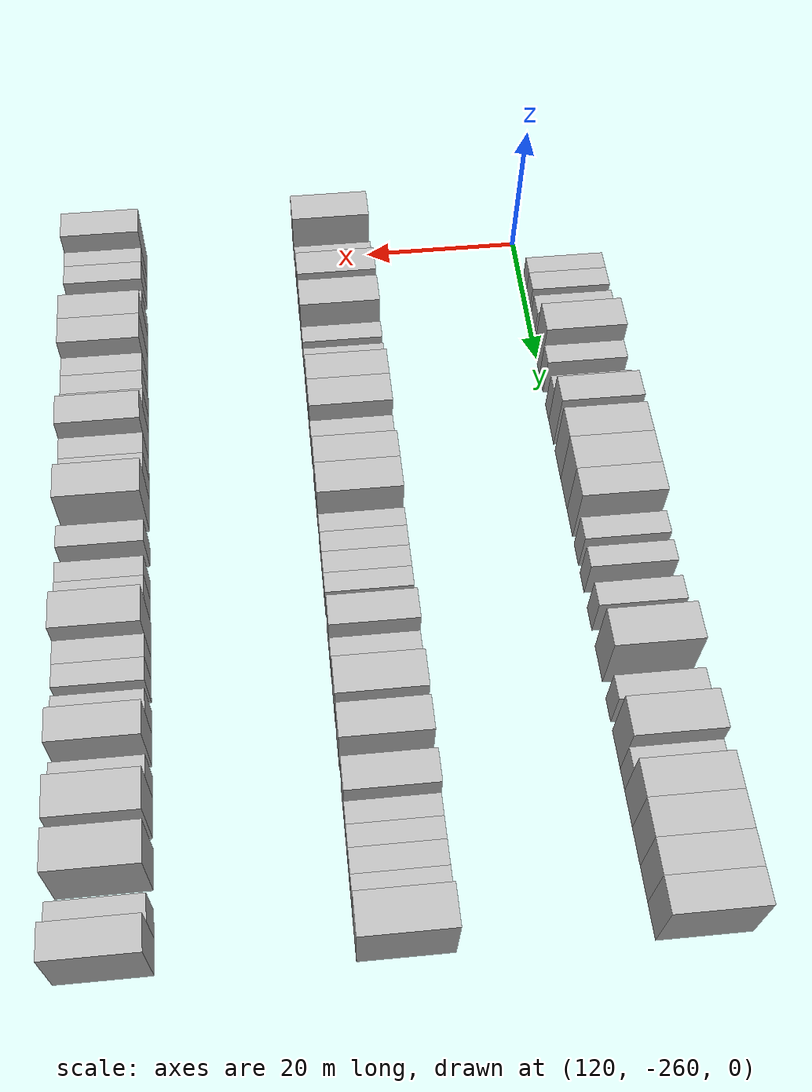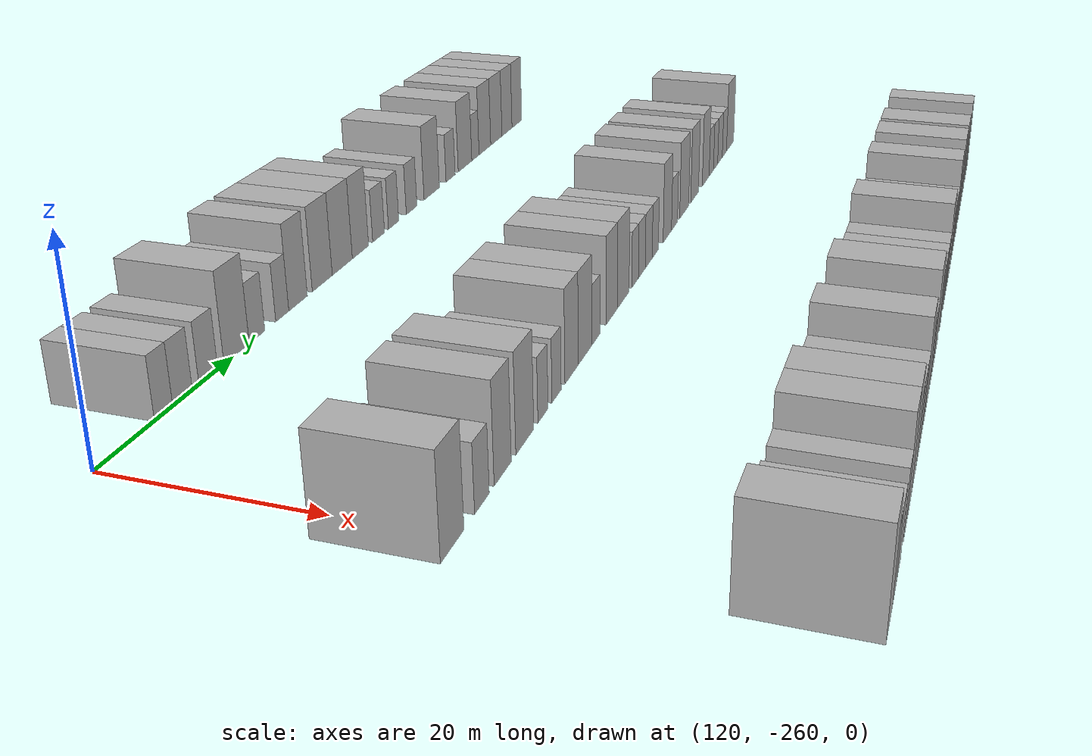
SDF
<sdf version="1.6">
 <world name="default">
  <model name="building_745">
   <static>1</static>
   <pose>115.0000 -250.7620 0 0.000000 0.000000 0.000000</pose>
   <link name="link">
    <pose>0 0 3.00 0 0 0</pose>
    <collision name="collision"><geometry><box><size>10.0000 2.5880 6.0000</size></box></geometry></collision>
    <visual name="visual">
     <cast_shadows>0</cast_shadows>
     <geometry><box><size>10.0000 2.5880 6.0000</size></box></geometry>
     <material>
      <script>
       <uri>model://HANNAS_wall/materials/scripts</uri>
       <uri>model://HANNAS_wall/materials/textures</uri>
       <name>vrc/HANNAS_wall</name>
      </script>
     </material>
    </visual>
   </link>
  </model>
  <model name="building_746">
   <static>1</static>
   <pose>115.0000 -248.0181 0 0.000000 0.000000 0.000000</pose>
   <link name="link">
    <pose>0 0 3.00 0 0 0</pose>
    <collision name="collision"><geometry><box><size>10.0000 2.8997 6.0000</size></box></geometry></collision>
    <visual name="visual">
     <cast_shadows>0</cast_shadows>
     <geometry><box><size>10.0000 2.8997 6.0000</size></box></geometry>
     <material>
      <script>
       <uri>model://HANNAS_wall/materials/scripts</uri>
       <uri>model://HANNAS_wall/materials/textures</uri>
       <name>vrc/HANNAS_wall</name>
      </script>
     </material>
    </visual>
   </link>
  </model>
  <model name="building_747">
   <static>1</static>
   <pose>115.0000 -244.0855 0 0.000000 0.000000 0.000000</pose>
   <link name="link">
    <pose>0 0 3.00 0 0 0</pose>
    <collision name="collision"><geometry><box><size>10.0000 2.9657 6.0000</size></box></geometry></collision>
    <visual name="visual">
     <cast_shadows>0</cast_shadows>
     <geometry><box><size>10.0000 2.9657 6.0000</size></box></geometry>
     <material>
      <script>
       <uri>model://HANNAS_wall/materials/scripts</uri>
       <uri>model://HANNAS_wall/materials/textures</uri>
       <name>vrc/HANNAS_wall</name>
      </script>
     </material>
    </visual>
   </link>
  </model>
  <model name="building_748">
   <static>1</static>
   <pose>115.0000 -239.4727 0 0.000000 0.000000 0.000000</pose>
   <link name="link">
    <pose>0 0 4.50 0 0 0</pose>
    <collision name="collision"><geometry><box><size>10.0000 4.2599 9.0000</size></box></geometry></collision>
    <visual name="visual">
     <cast_shadows>0</cast_shadows>
     <geometry><box><size>10.0000 4.2599 9.0000</size></box></geometry>
     <material>
      <script>
       <uri>model://HANNAS_wall/materials/scripts</uri>
       <uri>model://HANNAS_wall/materials/textures</uri>
       <name>vrc/HANNAS_wall</name>
      </script>
     </material>
    </visual>
   </link>
  </model>
  <model name="building_749">
   <static>1</static>
   <pose>115.0000 -235.9634 0 0.000000 0.000000 0.000000</pose>
   <link name="link">
    <pose>0 0 3.00 0 0 0</pose>
    <collision name="collision"><geometry><box><size>10.0000 2.7586 6.0000</size></box></geometry></collision>
    <visual name="visual">
     <cast_shadows>0</cast_shadows>
     <geometry><box><size>10.0000 2.7586 6.0000</size></box></geometry>
     <material>
      <script>
       <uri>model://HANNAS_wall/materials/scripts</uri>
       <uri>model://HANNAS_wall/materials/textures</uri>
       <name>vrc/HANNAS_wall</name>
      </script>
     </material>
    </visual>
   </link>
  </model>
  <model name="building_750">
   <static>1</static>
   <pose>115.0000 -231.3529 0 0.000000 0.000000 0.000000</pose>
   <link name="link">
    <pose>0 0 3.00 0 0 0</pose>
    <collision name="collision"><geometry><box><size>10.0000 2.4625 6.0000</size></box></geometry></collision>
    <visual name="visual">
     <cast_shadows>0</cast_shadows>
     <geometry><box><size>10.0000 2.4625 6.0000</size></box></geometry>
     <material>
      <script>
       <uri>model://HANNAS_wall/materials/scripts</uri>
       <uri>model://HANNAS_wall/materials/textures</uri>
       <name>vrc/HANNAS_wall</name>
      </script>
     </material>
    </visual>
   </link>
  </model>
  <model name="building_751">
   <static>1</static>
   <pose>115.0000 -228.2910 0 0.000000 0.000000 0.000000</pose>
   <link name="link">
    <pose>0 0 4.50 0 0 0</pose>
    <collision name="collision"><geometry><box><size>10.0000 3.6613 9.0000</size></box></geometry></collision>
    <visual name="visual">
     <cast_shadows>0</cast_shadows>
     <geometry><box><size>10.0000 3.6613 9.0000</size></box></geometry>
     <material>
      <script>
       <uri>model://HANNAS_wall/materials/scripts</uri>
       <uri>model://HANNAS_wall/materials/textures</uri>
       <name>vrc/HANNAS_wall</name>
      </script>
     </material>
    </visual>
   </link>
  </model>
  <model name="building_752">
   <static>1</static>
   <pose>115.0000 -223.3579 0 0.000000 0.000000 0.000000</pose>
   <link name="link">
    <pose>0 0 4.50 0 0 0</pose>
    <collision name="collision"><geometry><box><size>10.0000 4.2048 9.0000</size></box></geometry></collision>
    <visual name="visual">
     <cast_shadows>0</cast_shadows>
     <geometry><box><size>10.0000 4.2048 9.0000</size></box></geometry>
     <material>
      <script>
       <uri>model://HANNAS_wall/materials/scripts</uri>
       <uri>model://HANNAS_wall/materials/textures</uri>
       <name>vrc/HANNAS_wall</name>
      </script>
     </material>
    </visual>
   </link>
  </model>
  <model name="building_753">
   <static>1</static>
   <pose>115.0000 -219.0209 0 0.000000 0.000000 0.000000</pose>
   <link name="link">
    <pose>0 0 4.50 0 0 0</pose>
    <collision name="collision"><geometry><box><size>10.0000 4.4693 9.0000</size></box></geometry></collision>
    <visual name="visual">
     <cast_shadows>0</cast_shadows>
     <geometry><box><size>10.0000 4.4693 9.0000</size></box></geometry>
     <material>
      <script>
       <uri>model://HANNAS_wall/materials/scripts</uri>
       <uri>model://HANNAS_wall/materials/textures</uri>
       <name>vrc/HANNAS_wall</name>
      </script>
     </material>
    </visual>
   </link>
  </model>
  <model name="building_754">
   <static>1</static>
   <pose>115.0000 -214.8854 0 0.000000 0.000000 0.000000</pose>
   <link name="link">
    <pose>0 0 4.50 0 0 0</pose>
    <collision name="collision"><geometry><box><size>10.0000 3.8016 9.0000</size></box></geometry></collision>
    <visual name="visual">
     <cast_shadows>0</cast_shadows>
     <geometry><box><size>10.0000 3.8016 9.0000</size></box></geometry>
     <material>
      <script>
       <uri>model://HANNAS_wall/materials/scripts</uri>
       <uri>model://HANNAS_wall/materials/textures</uri>
       <name>vrc/HANNAS_wall</name>
      </script>
     </material>
    </visual>
   </link>
  </model>
  <model name="building_755">
   <static>1</static>
   <pose>115.0000 -210.5259 0 0.000000 0.000000 0.000000</pose>
   <link name="link">
    <pose>0 0 3.00 0 0 0</pose>
    <collision name="collision"><geometry><box><size>10.0000 2.9173 6.0000</size></box></geometry></collision>
    <visual name="visual">
     <cast_shadows>0</cast_shadows>
     <geometry><box><size>10.0000 2.9173 6.0000</size></box></geometry>
     <material>
      <script>
       <uri>model://HANNAS_wall/materials/scripts</uri>
       <uri>model://HANNAS_wall/materials/textures</uri>
       <name>vrc/HANNAS_wall</name>
      </script>
     </material>
    </visual>
   </link>
  </model>
  <model name="building_756">
   <static>1</static>
   <pose>115.0000 -206.7354 0 0.000000 0.000000 0.000000</pose>
   <link name="link">
    <pose>0 0 3.00 0 0 0</pose>
    <collision name="collision"><geometry><box><size>10.0000 2.6638 6.0000</size></box></geometry></collision>
    <visual name="visual">
     <cast_shadows>0</cast_shadows>
     <geometry><box><size>10.0000 2.6638 6.0000</size></box></geometry>
     <material>
      <script>
       <uri>model://HANNAS_wall/materials/scripts</uri>
       <uri>model://HANNAS_wall/materials/textures</uri>
       <name>vrc/HANNAS_wall</name>
      </script>
     </material>
    </visual>
   </link>
  </model>
  <model name="building_757">
   <static>1</static>
   <pose>115.0000 -201.9475 0 0.000000 0.000000 0.000000</pose>
   <link name="link">
    <pose>0 0 3.00 0 0 0</pose>
    <collision name="collision"><geometry><box><size>10.0000 2.9118 6.0000</size></box></geometry></collision>
    <visual name="visual">
     <cast_shadows>0</cast_shadows>
     <geometry><box><size>10.0000 2.9118 6.0000</size></box></geometry>
     <material>
      <script>
       <uri>model://HANNAS_wall/materials/scripts</uri>
       <uri>model://HANNAS_wall/materials/textures</uri>
       <name>vrc/HANNAS_wall</name>
      </script>
     </material>
    </visual>
   </link>
  </model>
  <model name="building_758">
   <static>1</static>
   <pose>115.0000 -196.2515 0 0.000000 0.000000 0.000000</pose>
   <link name="link">
    <pose>0 0 4.50 0 0 0</pose>
    <collision name="collision"><geometry><box><size>10.0000 4.4802 9.0000</size></box></geometry></collision>
    <visual name="visual">
     <cast_shadows>0</cast_shadows>
     <geometry><box><size>10.0000 4.4802 9.0000</size></box></geometry>
     <material>
      <script>
       <uri>model://HANNAS_wall/materials/scripts</uri>
       <uri>model://HANNAS_wall/materials/textures</uri>
       <name>vrc/HANNAS_wall</name>
      </script>
     </material>
    </visual>
   </link>
  </model>
  <model name="building_759">
   <static>1</static>
   <pose>115.0000 -190.6073 0 0.000000 0.000000 0.000000</pose>
   <link name="link">
    <pose>0 0 3.00 0 0 0</pose>
    <collision name="collision"><geometry><box><size>10.0000 2.8083 6.0000</size></box></geometry></collision>
    <visual name="visual">
     <cast_shadows>0</cast_shadows>
     <geometry><box><size>10.0000 2.8083 6.0000</size></box></geometry>
     <material>
      <script>
       <uri>model://HANNAS_wall/materials/scripts</uri>
       <uri>model://HANNAS_wall/materials/textures</uri>
       <name>vrc/HANNAS_wall</name>
      </script>
     </material>
    </visual>
   </link>
  </model>
  <model name="building_760">
   <static>1</static>
   <pose>115.0000 -185.9932 0 0.000000 0.000000 0.000000</pose>
   <link name="link">
    <pose>0 0 4.50 0 0 0</pose>
    <collision name="collision"><geometry><box><size>10.0000 4.4198 9.0000</size></box></geometry></collision>
    <visual name="visual">
     <cast_shadows>0</cast_shadows>
     <geometry><box><size>10.0000 4.4198 9.0000</size></box></geometry>
     <material>
      <script>
       <uri>model://HANNAS_wall/materials/scripts</uri>
       <uri>model://HANNAS_wall/materials/textures</uri>
       <name>vrc/HANNAS_wall</name>
      </script>
     </material>
    </visual>
   </link>
  </model>
  <model name="building_761">
   <static>1</static>
   <pose>115.0000 -182.5559 0 0.000000 0.000000 0.000000</pose>
   <link name="link">
    <pose>0 0 3.00 0 0 0</pose>
    <collision name="collision"><geometry><box><size>10.0000 2.4548 6.0000</size></box></geometry></collision>
    <visual name="visual">
     <cast_shadows>0</cast_shadows>
     <geometry><box><size>10.0000 2.4548 6.0000</size></box></geometry>
     <material>
      <script>
       <uri>model://HANNAS_wall/materials/scripts</uri>
       <uri>model://HANNAS_wall/materials/textures</uri>
       <name>vrc/HANNAS_wall</name>
      </script>
     </material>
    </visual>
   </link>
  </model>
  <model name="building_762">
   <static>1</static>
   <pose>115.0000 -179.2845 0 0.000000 0.000000 0.000000</pose>
   <link name="link">
    <pose>0 0 4.50 0 0 0</pose>
    <collision name="collision"><geometry><box><size>10.0000 4.0879 9.0000</size></box></geometry></collision>
    <visual name="visual">
     <cast_shadows>0</cast_shadows>
     <geometry><box><size>10.0000 4.0879 9.0000</size></box></geometry>
     <material>
      <script>
       <uri>model://HANNAS_wall/materials/scripts</uri>
       <uri>model://HANNAS_wall/materials/textures</uri>
       <name>vrc/HANNAS_wall</name>
      </script>
     </material>
    </visual>
   </link>
  </model>
  <model name="building_763">
   <static>1</static>
   <pose>115.0000 -175.1953 0 0.000000 0.000000 0.000000</pose>
   <link name="link">
    <pose>0 0 4.50 0 0 0</pose>
    <collision name="collision"><geometry><box><size>10.0000 4.0905 9.0000</size></box></geometry></collision>
    <visual name="visual">
     <cast_shadows>0</cast_shadows>
     <geometry><box><size>10.0000 4.0905 9.0000</size></box></geometry>
     <material>
      <script>
       <uri>model://HANNAS_wall/materials/scripts</uri>
       <uri>model://HANNAS_wall/materials/textures</uri>
       <name>vrc/HANNAS_wall</name>
      </script>
     </material>
    </visual>
   </link>
  </model>
  <model name="building_764">
   <static>1</static>
   <pose>115.0000 -171.2573 0 0.000000 0.000000 0.000000</pose>
   <link name="link">
    <pose>0 0 4.50 0 0 0</pose>
    <collision name="collision"><geometry><box><size>10.0000 3.7856 9.0000</size></box></geometry></collision>
    <visual name="visual">
     <cast_shadows>0</cast_shadows>
     <geometry><box><size>10.0000 3.7856 9.0000</size></box></geometry>
     <material>
      <script>
       <uri>model://HANNAS_wall/materials/scripts</uri>
       <uri>model://HANNAS_wall/materials/textures</uri>
       <name>vrc/HANNAS_wall</name>
      </script>
     </material>
    </visual>
   </link>
  </model>
  <model name="building_765">
   <static>1</static>
   <pose>115.0000 -167.4652 0 0.000000 0.000000 0.000000</pose>
   <link name="link">
    <pose>0 0 4.50 0 0 0</pose>
    <collision name="collision"><geometry><box><size>10.0000 3.7987 9.0000</size></box></geometry></collision>
    <visual name="visual">
     <cast_shadows>0</cast_shadows>
     <geometry><box><size>10.0000 3.7987 9.0000</size></box></geometry>
     <material>
      <script>
       <uri>model://HANNAS_wall/materials/scripts</uri>
       <uri>model://HANNAS_wall/materials/textures</uri>
       <name>vrc/HANNAS_wall</name>
      </script>
     </material>
    </visual>
   </link>
  </model>
  <model name="building_961">
   <static>1</static>
   <pose>145.0000 -260.8924 0 0.000000 0.000000 0.000000</pose>
   <link name="link">
    <pose>0 0 4.50 0 0 0</pose>
    <collision name="collision"><geometry><box><size>10.0000 4.2071 9.0000</size></box></geometry></collision>
    <visual name="visual">
     <cast_shadows>0</cast_shadows>
     <geometry><box><size>10.0000 4.2071 9.0000</size></box></geometry>
     <material>
      <script>
       <uri>model://HANNAS_wall/materials/scripts</uri>
       <uri>model://HANNAS_wall/materials/textures</uri>
       <name>vrc/HANNAS_wall</name>
      </script>
     </material>
    </visual>
   </link>
  </model>
  <model name="building_962">
   <static>1</static>
   <pose>145.0000 -255.3461 0 0.000000 0.000000 0.000000</pose>
   <link name="link">
    <pose>0 0 3.00 0 0 0</pose>
    <collision name="collision"><geometry><box><size>10.0000 2.8854 6.0000</size></box></geometry></collision>
    <visual name="visual">
     <cast_shadows>0</cast_shadows>
     <geometry><box><size>10.0000 2.8854 6.0000</size></box></geometry>
     <material>
      <script>
       <uri>model://HANNAS_wall/materials/scripts</uri>
       <uri>model://HANNAS_wall/materials/textures</uri>
       <name>vrc/HANNAS_wall</name>
      </script>
     </material>
    </visual>
   </link>
  </model>
  <model name="building_963">
   <static>1</static>
   <pose>145.0000 -251.0836 0 0.000000 0.000000 0.000000</pose>
   <link name="link">
    <pose>0 0 4.50 0 0 0</pose>
    <collision name="collision"><geometry><box><size>10.0000 3.6396 9.0000</size></box></geometry></collision>
    <visual name="visual">
     <cast_shadows>0</cast_shadows>
     <geometry><box><size>10.0000 3.6396 9.0000</size></box></geometry>
     <material>
      <script>
       <uri>model://HANNAS_wall/materials/scripts</uri>
       <uri>model://HANNAS_wall/materials/textures</uri>
       <name>vrc/HANNAS_wall</name>
      </script>
     </material>
    </visual>
   </link>
  </model>
  <model name="building_964">
   <static>1</static>
   <pose>145.0000 -246.2006 0 0.000000 0.000000 0.000000</pose>
   <link name="link">
    <pose>0 0 4.50 0 0 0</pose>
    <collision name="collision"><geometry><box><size>10.0000 4.1265 9.0000</size></box></geometry></collision>
    <visual name="visual">
     <cast_shadows>0</cast_shadows>
     <geometry><box><size>10.0000 4.1265 9.0000</size></box></geometry>
     <material>
      <script>
       <uri>model://HANNAS_wall/materials/scripts</uri>
       <uri>model://HANNAS_wall/materials/textures</uri>
       <name>vrc/HANNAS_wall</name>
      </script>
     </material>
    </visual>
   </link>
  </model>
  <model name="building_965">
   <static>1</static>
   <pose>145.0000 -241.8842 0 0.000000 0.000000 0.000000</pose>
   <link name="link">
    <pose>0 0 3.00 0 0 0</pose>
    <collision name="collision"><geometry><box><size>10.0000 2.5062 6.0000</size></box></geometry></collision>
    <visual name="visual">
     <cast_shadows>0</cast_shadows>
     <geometry><box><size>10.0000 2.5062 6.0000</size></box></geometry>
     <material>
      <script>
       <uri>model://HANNAS_wall/materials/scripts</uri>
       <uri>model://HANNAS_wall/materials/textures</uri>
       <name>vrc/HANNAS_wall</name>
      </script>
     </material>
    </visual>
   </link>
  </model>
  <model name="building_966">
   <static>1</static>
   <pose>145.0000 -238.4248 0 0.000000 0.000000 0.000000</pose>
   <link name="link">
    <pose>0 0 3.00 0 0 0</pose>
    <collision name="collision"><geometry><box><size>10.0000 2.4126 6.0000</size></box></geometry></collision>
    <visual name="visual">
     <cast_shadows>0</cast_shadows>
     <geometry><box><size>10.0000 2.4126 6.0000</size></box></geometry>
     <material>
      <script>
       <uri>model://HANNAS_wall/materials/scripts</uri>
       <uri>model://HANNAS_wall/materials/textures</uri>
       <name>vrc/HANNAS_wall</name>
      </script>
     </material>
    </visual>
   </link>
  </model>
  <model name="building_967">
   <static>1</static>
   <pose>145.0000 -234.3516 0 0.000000 0.000000 0.000000</pose>
   <link name="link">
    <pose>0 0 4.50 0 0 0</pose>
    <collision name="collision"><geometry><box><size>10.0000 3.7337 9.0000</size></box></geometry></collision>
    <visual name="visual">
     <cast_shadows>0</cast_shadows>
     <geometry><box><size>10.0000 3.7337 9.0000</size></box></geometry>
     <material>
      <script>
       <uri>model://HANNAS_wall/materials/scripts</uri>
       <uri>model://HANNAS_wall/materials/textures</uri>
       <name>vrc/HANNAS_wall</name>
      </script>
     </material>
    </visual>
   </link>
  </model>
  <model name="building_968">
   <static>1</static>
   <pose>145.0000 -230.4843 0 0.000000 0.000000 0.000000</pose>
   <link name="link">
    <pose>0 0 4.50 0 0 0</pose>
    <collision name="collision"><geometry><box><size>10.0000 4.0009 9.0000</size></box></geometry></collision>
    <visual name="visual">
     <cast_shadows>0</cast_shadows>
     <geometry><box><size>10.0000 4.0009 9.0000</size></box></geometry>
     <material>
      <script>
       <uri>model://HANNAS_wall/materials/scripts</uri>
       <uri>model://HANNAS_wall/materials/textures</uri>
       <name>vrc/HANNAS_wall</name>
      </script>
     </material>
    </visual>
   </link>
  </model>
  <model name="building_969">
   <static>1</static>
   <pose>145.0000 -227.2520 0 0.000000 0.000000 0.000000</pose>
   <link name="link">
    <pose>0 0 3.00 0 0 0</pose>
    <collision name="collision"><geometry><box><size>10.0000 2.4638 6.0000</size></box></geometry></collision>
    <visual name="visual">
     <cast_shadows>0</cast_shadows>
     <geometry><box><size>10.0000 2.4638 6.0000</size></box></geometry>
     <material>
      <script>
       <uri>model://HANNAS_wall/materials/scripts</uri>
       <uri>model://HANNAS_wall/materials/textures</uri>
       <name>vrc/HANNAS_wall</name>
      </script>
     </material>
    </visual>
   </link>
  </model>
  <model name="building_970">
   <static>1</static>
   <pose>145.0000 -222.1908 0 0.000000 0.000000 0.000000</pose>
   <link name="link">
    <pose>0 0 4.50 0 0 0</pose>
    <collision name="collision"><geometry><box><size>10.0000 3.6586 9.0000</size></box></geometry></collision>
    <visual name="visual">
     <cast_shadows>0</cast_shadows>
     <geometry><box><size>10.0000 3.6586 9.0000</size></box></geometry>
     <material>
      <script>
       <uri>model://HANNAS_wall/materials/scripts</uri>
       <uri>model://HANNAS_wall/materials/textures</uri>
       <name>vrc/HANNAS_wall</name>
      </script>
     </material>
    </visual>
   </link>
  </model>
  <model name="building_971">
   <static>1</static>
   <pose>145.0000 -218.2954 0 0.000000 0.000000 0.000000</pose>
   <link name="link">
    <pose>0 0 4.50 0 0 0</pose>
    <collision name="collision"><geometry><box><size>10.0000 4.1322 9.0000</size></box></geometry></collision>
    <visual name="visual">
     <cast_shadows>0</cast_shadows>
     <geometry><box><size>10.0000 4.1322 9.0000</size></box></geometry>
     <material>
      <script>
       <uri>model://HANNAS_wall/materials/scripts</uri>
       <uri>model://HANNAS_wall/materials/textures</uri>
       <name>vrc/HANNAS_wall</name>
      </script>
     </material>
    </visual>
   </link>
  </model>
  <model name="building_972">
   <static>1</static>
   <pose>145.0000 -214.0194 0 0.000000 0.000000 0.000000</pose>
   <link name="link">
    <pose>0 0 3.00 0 0 0</pose>
    <collision name="collision"><geometry><box><size>10.0000 2.4198 6.0000</size></box></geometry></collision>
    <visual name="visual">
     <cast_shadows>0</cast_shadows>
     <geometry><box><size>10.0000 2.4198 6.0000</size></box></geometry>
     <material>
      <script>
       <uri>model://HANNAS_wall/materials/scripts</uri>
       <uri>model://HANNAS_wall/materials/textures</uri>
       <name>vrc/HANNAS_wall</name>
      </script>
     </material>
    </visual>
   </link>
  </model>
  <model name="building_973">
   <static>1</static>
   <pose>145.0000 -211.4927 0 0.000000 0.000000 0.000000</pose>
   <link name="link">
    <pose>0 0 3.00 0 0 0</pose>
    <collision name="collision"><geometry><box><size>10.0000 2.6338 6.0000</size></box></geometry></collision>
    <visual name="visual">
     <cast_shadows>0</cast_shadows>
     <geometry><box><size>10.0000 2.6338 6.0000</size></box></geometry>
     <material>
      <script>
       <uri>model://HANNAS_wall/materials/scripts</uri>
       <uri>model://HANNAS_wall/materials/textures</uri>
       <name>vrc/HANNAS_wall</name>
      </script>
     </material>
    </visual>
   </link>
  </model>
  <model name="building_974">
   <static>1</static>
   <pose>145.0000 -208.8015 0 0.000000 0.000000 0.000000</pose>
   <link name="link">
    <pose>0 0 3.00 0 0 0</pose>
    <collision name="collision"><geometry><box><size>10.0000 2.7486 6.0000</size></box></geometry></collision>
    <visual name="visual">
     <cast_shadows>0</cast_shadows>
     <geometry><box><size>10.0000 2.7486 6.0000</size></box></geometry>
     <material>
      <script>
       <uri>model://HANNAS_wall/materials/scripts</uri>
       <uri>model://HANNAS_wall/materials/textures</uri>
       <name>vrc/HANNAS_wall</name>
      </script>
     </material>
    </visual>
   </link>
  </model>
  <model name="building_975">
   <static>1</static>
   <pose>145.0000 -206.1712 0 0.000000 0.000000 0.000000</pose>
   <link name="link">
    <pose>0 0 3.00 0 0 0</pose>
    <collision name="collision"><geometry><box><size>10.0000 2.5120 6.0000</size></box></geometry></collision>
    <visual name="visual">
     <cast_shadows>0</cast_shadows>
     <geometry><box><size>10.0000 2.5120 6.0000</size></box></geometry>
     <material>
      <script>
       <uri>model://HANNAS_wall/materials/scripts</uri>
       <uri>model://HANNAS_wall/materials/textures</uri>
       <name>vrc/HANNAS_wall</name>
      </script>
     </material>
    </visual>
   </link>
  </model>
  <model name="building_976">
   <static>1</static>
   <pose>145.0000 -201.0935 0 0.000000 0.000000 0.000000</pose>
   <link name="link">
    <pose>0 0 4.50 0 0 0</pose>
    <collision name="collision"><geometry><box><size>10.0000 3.6436 9.0000</size></box></geometry></collision>
    <visual name="visual">
     <cast_shadows>0</cast_shadows>
     <geometry><box><size>10.0000 3.6436 9.0000</size></box></geometry>
     <material>
      <script>
       <uri>model://HANNAS_wall/materials/scripts</uri>
       <uri>model://HANNAS_wall/materials/textures</uri>
       <name>vrc/HANNAS_wall</name>
      </script>
     </material>
    </visual>
   </link>
  </model>
  <model name="building_977">
   <static>1</static>
   <pose>145.0000 -197.9168 0 0.000000 0.000000 0.000000</pose>
   <link name="link">
    <pose>0 0 3.00 0 0 0</pose>
    <collision name="collision"><geometry><box><size>10.0000 2.7098 6.0000</size></box></geometry></collision>
    <visual name="visual">
     <cast_shadows>0</cast_shadows>
     <geometry><box><size>10.0000 2.7098 6.0000</size></box></geometry>
     <material>
      <script>
       <uri>model://HANNAS_wall/materials/scripts</uri>
       <uri>model://HANNAS_wall/materials/textures</uri>
       <name>vrc/HANNAS_wall</name>
      </script>
     </material>
    </visual>
   </link>
  </model>
  <model name="building_978">
   <static>1</static>
   <pose>145.0000 -193.4212 0 0.000000 0.000000 0.000000</pose>
   <link name="link">
    <pose>0 0 4.50 0 0 0</pose>
    <collision name="collision"><geometry><box><size>10.0000 4.2814 9.0000</size></box></geometry></collision>
    <visual name="visual">
     <cast_shadows>0</cast_shadows>
     <geometry><box><size>10.0000 4.2814 9.0000</size></box></geometry>
     <material>
      <script>
       <uri>model://HANNAS_wall/materials/scripts</uri>
       <uri>model://HANNAS_wall/materials/textures</uri>
       <name>vrc/HANNAS_wall</name>
      </script>
     </material>
    </visual>
   </link>
  </model>
  <model name="building_979">
   <static>1</static>
   <pose>145.0000 -188.3283 0 0.000000 0.000000 0.000000</pose>
   <link name="link">
    <pose>0 0 4.50 0 0 0</pose>
    <collision name="collision"><geometry><box><size>10.0000 3.9044 9.0000</size></box></geometry></collision>
    <visual name="visual">
     <cast_shadows>0</cast_shadows>
     <geometry><box><size>10.0000 3.9044 9.0000</size></box></geometry>
     <material>
      <script>
       <uri>model://HANNAS_wall/materials/scripts</uri>
       <uri>model://HANNAS_wall/materials/textures</uri>
       <name>vrc/HANNAS_wall</name>
      </script>
     </material>
    </visual>
   </link>
  </model>
  <model name="building_980">
   <static>1</static>
   <pose>145.0000 -182.5429 0 0.000000 0.000000 0.000000</pose>
   <link name="link">
    <pose>0 0 4.50 0 0 0</pose>
    <collision name="collision"><geometry><box><size>10.0000 3.6665 9.0000</size></box></geometry></collision>
    <visual name="visual">
     <cast_shadows>0</cast_shadows>
     <geometry><box><size>10.0000 3.6665 9.0000</size></box></geometry>
     <material>
      <script>
       <uri>model://HANNAS_wall/materials/scripts</uri>
       <uri>model://HANNAS_wall/materials/textures</uri>
       <name>vrc/HANNAS_wall</name>
      </script>
     </material>
    </visual>
   </link>
  </model>
  <model name="building_981">
   <static>1</static>
   <pose>145.0000 -179.4961 0 0.000000 0.000000 0.000000</pose>
   <link name="link">
    <pose>0 0 3.00 0 0 0</pose>
    <collision name="collision"><geometry><box><size>10.0000 2.4270 6.0000</size></box></geometry></collision>
    <visual name="visual">
     <cast_shadows>0</cast_shadows>
     <geometry><box><size>10.0000 2.4270 6.0000</size></box></geometry>
     <material>
      <script>
       <uri>model://HANNAS_wall/materials/scripts</uri>
       <uri>model://HANNAS_wall/materials/textures</uri>
       <name>vrc/HANNAS_wall</name>
      </script>
     </material>
    </visual>
   </link>
  </model>
  <model name="building_982">
   <static>1</static>
   <pose>145.0000 -177.0818 0 0.000000 0.000000 0.000000</pose>
   <link name="link">
    <pose>0 0 3.00 0 0 0</pose>
    <collision name="collision"><geometry><box><size>10.0000 2.4016 6.0000</size></box></geometry></collision>
    <visual name="visual">
     <cast_shadows>0</cast_shadows>
     <geometry><box><size>10.0000 2.4016 6.0000</size></box></geometry>
     <material>
      <script>
       <uri>model://HANNAS_wall/materials/scripts</uri>
       <uri>model://HANNAS_wall/materials/textures</uri>
       <name>vrc/HANNAS_wall</name>
      </script>
     </material>
    </visual>
   </link>
  </model>
  <model name="building_983">
   <static>1</static>
   <pose>145.0000 -174.5426 0 0.000000 0.000000 0.000000</pose>
   <link name="link">
    <pose>0 0 3.00 0 0 0</pose>
    <collision name="collision"><geometry><box><size>10.0000 2.6768 6.0000</size></box></geometry></collision>
    <visual name="visual">
     <cast_shadows>0</cast_shadows>
     <geometry><box><size>10.0000 2.6768 6.0000</size></box></geometry>
     <material>
      <script>
       <uri>model://HANNAS_wall/materials/scripts</uri>
       <uri>model://HANNAS_wall/materials/textures</uri>
       <name>vrc/HANNAS_wall</name>
      </script>
     </material>
    </visual>
   </link>
  </model>
  <model name="building_984">
   <static>1</static>
   <pose>145.0000 -171.9196 0 0.000000 0.000000 0.000000</pose>
   <link name="link">
    <pose>0 0 3.00 0 0 0</pose>
    <collision name="collision"><geometry><box><size>10.0000 2.5693 6.0000</size></box></geometry></collision>
    <visual name="visual">
     <cast_shadows>0</cast_shadows>
     <geometry><box><size>10.0000 2.5693 6.0000</size></box></geometry>
     <material>
      <script>
       <uri>model://HANNAS_wall/materials/scripts</uri>
       <uri>model://HANNAS_wall/materials/textures</uri>
       <name>vrc/HANNAS_wall</name>
      </script>
     </material>
    </visual>
   </link>
  </model>
  <model name="building_985">
   <static>1</static>
   <pose>145.0000 -168.4371 0 0.000000 0.000000 0.000000</pose>
   <link name="link">
    <pose>0 0 4.50 0 0 0</pose>
    <collision name="collision"><geometry><box><size>10.0000 4.3957 9.0000</size></box></geometry></collision>
    <visual name="visual">
     <cast_shadows>0</cast_shadows>
     <geometry><box><size>10.0000 4.3957 9.0000</size></box></geometry>
     <material>
      <script>
       <uri>model://HANNAS_wall/materials/scripts</uri>
       <uri>model://HANNAS_wall/materials/textures</uri>
       <name>vrc/HANNAS_wall</name>
      </script>
     </material>
    </visual>
   </link>
  </model>
  <model name="building_1197">
   <static>1</static>
   <pose>175.0000 -260.5291 0 0.000000 0.000000 0.000000</pose>
   <link name="link">
    <pose>0 0 4.50 0 0 0</pose>
    <collision name="collision"><geometry><box><size>10.0000 4.0484 9.0000</size></box></geometry></collision>
    <visual name="visual">
     <cast_shadows>0</cast_shadows>
     <geometry><box><size>10.0000 4.0484 9.0000</size></box></geometry>
     <material>
      <script>
       <uri>model://HANNAS_wall/materials/scripts</uri>
       <uri>model://HANNAS_wall/materials/textures</uri>
       <name>vrc/HANNAS_wall</name>
      </script>
     </material>
    </visual>
   </link>
  </model>
  <model name="building_1198">
   <static>1</static>
   <pose>175.0000 -257.2894 0 0.000000 0.000000 0.000000</pose>
   <link name="link">
    <pose>0 0 3.00 0 0 0</pose>
    <collision name="collision"><geometry><box><size>10.0000 2.4310 6.0000</size></box></geometry></collision>
    <visual name="visual">
     <cast_shadows>0</cast_shadows>
     <geometry><box><size>10.0000 2.4310 6.0000</size></box></geometry>
     <material>
      <script>
       <uri>model://HANNAS_wall/materials/scripts</uri>
       <uri>model://HANNAS_wall/materials/textures</uri>
       <name>vrc/HANNAS_wall</name>
      </script>
     </material>
    </visual>
   </link>
  </model>
  <model name="building_1199">
   <static>1</static>
   <pose>175.0000 -254.5760 0 0.000000 0.000000 0.000000</pose>
   <link name="link">
    <pose>0 0 3.00 0 0 0</pose>
    <collision name="collision"><geometry><box><size>10.0000 2.9958 6.0000</size></box></geometry></collision>
    <visual name="visual">
     <cast_shadows>0</cast_shadows>
     <geometry><box><size>10.0000 2.9958 6.0000</size></box></geometry>
     <material>
      <script>
       <uri>model://HANNAS_wall/materials/scripts</uri>
       <uri>model://HANNAS_wall/materials/textures</uri>
       <name>vrc/HANNAS_wall</name>
      </script>
     </material>
    </visual>
   </link>
  </model>
  <model name="building_1200">
   <static>1</static>
   <pose>175.0000 -249.7980 0 0.000000 0.000000 0.000000</pose>
   <link name="link">
    <pose>0 0 3.00 0 0 0</pose>
    <collision name="collision"><geometry><box><size>10.0000 2.5603 6.0000</size></box></geometry></collision>
    <visual name="visual">
     <cast_shadows>0</cast_shadows>
     <geometry><box><size>10.0000 2.5603 6.0000</size></box></geometry>
     <material>
      <script>
       <uri>model://HANNAS_wall/materials/scripts</uri>
       <uri>model://HANNAS_wall/materials/textures</uri>
       <name>vrc/HANNAS_wall</name>
      </script>
     </material>
    </visual>
   </link>
  </model>
  <model name="building_1201">
   <static>1</static>
   <pose>175.0000 -246.6189 0 0.000000 0.000000 0.000000</pose>
   <link name="link">
    <pose>0 0 4.50 0 0 0</pose>
    <collision name="collision"><geometry><box><size>10.0000 3.7978 9.0000</size></box></geometry></collision>
    <visual name="visual">
     <cast_shadows>0</cast_shadows>
     <geometry><box><size>10.0000 3.7978 9.0000</size></box></geometry>
     <material>
      <script>
       <uri>model://HANNAS_wall/materials/scripts</uri>
       <uri>model://HANNAS_wall/materials/textures</uri>
       <name>vrc/HANNAS_wall</name>
      </script>
     </material>
    </visual>
   </link>
  </model>
  <model name="building_1202">
   <static>1</static>
   <pose>175.0000 -242.7942 0 0.000000 0.000000 0.000000</pose>
   <link name="link">
    <pose>0 0 4.50 0 0 0</pose>
    <collision name="collision"><geometry><box><size>10.0000 3.8516 9.0000</size></box></geometry></collision>
    <visual name="visual">
     <cast_shadows>0</cast_shadows>
     <geometry><box><size>10.0000 3.8516 9.0000</size></box></geometry>
     <material>
      <script>
       <uri>model://HANNAS_wall/materials/scripts</uri>
       <uri>model://HANNAS_wall/materials/textures</uri>
       <name>vrc/HANNAS_wall</name>
      </script>
     </material>
    </visual>
   </link>
  </model>
  <model name="building_1203">
   <static>1</static>
   <pose>175.0000 -239.4763 0 0.000000 0.000000 0.000000</pose>
   <link name="link">
    <pose>0 0 3.00 0 0 0</pose>
    <collision name="collision"><geometry><box><size>10.0000 2.7841 6.0000</size></box></geometry></collision>
    <visual name="visual">
     <cast_shadows>0</cast_shadows>
     <geometry><box><size>10.0000 2.7841 6.0000</size></box></geometry>
     <material>
      <script>
       <uri>model://HANNAS_wall/materials/scripts</uri>
       <uri>model://HANNAS_wall/materials/textures</uri>
       <name>vrc/HANNAS_wall</name>
      </script>
     </material>
    </visual>
   </link>
  </model>
  <model name="building_1204">
   <static>1</static>
   <pose>175.0000 -236.6611 0 0.000000 0.000000 0.000000</pose>
   <link name="link">
    <pose>0 0 3.00 0 0 0</pose>
    <collision name="collision"><geometry><box><size>10.0000 2.8462 6.0000</size></box></geometry></collision>
    <visual name="visual">
     <cast_shadows>0</cast_shadows>
     <geometry><box><size>10.0000 2.8462 6.0000</size></box></geometry>
     <material>
      <script>
       <uri>model://HANNAS_wall/materials/scripts</uri>
       <uri>model://HANNAS_wall/materials/textures</uri>
       <name>vrc/HANNAS_wall</name>
      </script>
     </material>
    </visual>
   </link>
  </model>
  <model name="building_1205">
   <static>1</static>
   <pose>175.0000 -233.9628 0 0.000000 0.000000 0.000000</pose>
   <link name="link">
    <pose>0 0 3.00 0 0 0</pose>
    <collision name="collision"><geometry><box><size>10.0000 2.5506 6.0000</size></box></geometry></collision>
    <visual name="visual">
     <cast_shadows>0</cast_shadows>
     <geometry><box><size>10.0000 2.5506 6.0000</size></box></geometry>
     <material>
      <script>
       <uri>model://HANNAS_wall/materials/scripts</uri>
       <uri>model://HANNAS_wall/materials/textures</uri>
       <name>vrc/HANNAS_wall</name>
      </script>
     </material>
    </visual>
   </link>
  </model>
  <model name="building_1206">
   <static>1</static>
   <pose>175.0000 -230.6804 0 0.000000 0.000000 0.000000</pose>
   <link name="link">
    <pose>0 0 4.50 0 0 0</pose>
    <collision name="collision"><geometry><box><size>10.0000 4.0142 9.0000</size></box></geometry></collision>
    <visual name="visual">
     <cast_shadows>0</cast_shadows>
     <geometry><box><size>10.0000 4.0142 9.0000</size></box></geometry>
     <material>
      <script>
       <uri>model://HANNAS_wall/materials/scripts</uri>
       <uri>model://HANNAS_wall/materials/textures</uri>
       <name>vrc/HANNAS_wall</name>
      </script>
     </material>
    </visual>
   </link>
  </model>
  <model name="building_1207">
   <static>1</static>
   <pose>175.0000 -227.1874 0 0.000000 0.000000 0.000000</pose>
   <link name="link">
    <pose>0 0 3.00 0 0 0</pose>
    <collision name="collision"><geometry><box><size>10.0000 2.9718 6.0000</size></box></geometry></collision>
    <visual name="visual">
     <cast_shadows>0</cast_shadows>
     <geometry><box><size>10.0000 2.9718 6.0000</size></box></geometry>
     <material>
      <script>
       <uri>model://HANNAS_wall/materials/scripts</uri>
       <uri>model://HANNAS_wall/materials/textures</uri>
       <name>vrc/HANNAS_wall</name>
      </script>
     </material>
    </visual>
   </link>
  </model>
  <model name="building_1208">
   <static>1</static>
   <pose>175.0000 -224.2763 0 0.000000 0.000000 0.000000</pose>
   <link name="link">
    <pose>0 0 3.00 0 0 0</pose>
    <collision name="collision"><geometry><box><size>10.0000 2.8503 6.0000</size></box></geometry></collision>
    <visual name="visual">
     <cast_shadows>0</cast_shadows>
     <geometry><box><size>10.0000 2.8503 6.0000</size></box></geometry>
     <material>
      <script>
       <uri>model://HANNAS_wall/materials/scripts</uri>
       <uri>model://HANNAS_wall/materials/textures</uri>
       <name>vrc/HANNAS_wall</name>
      </script>
     </material>
    </visual>
   </link>
  </model>
  <model name="building_1209">
   <static>1</static>
   <pose>175.0000 -220.6080 0 0.000000 0.000000 0.000000</pose>
   <link name="link">
    <pose>0 0 4.50 0 0 0</pose>
    <collision name="collision"><geometry><box><size>10.0000 4.4863 9.0000</size></box></geometry></collision>
    <visual name="visual">
     <cast_shadows>0</cast_shadows>
     <geometry><box><size>10.0000 4.4863 9.0000</size></box></geometry>
     <material>
      <script>
       <uri>model://HANNAS_wall/materials/scripts</uri>
       <uri>model://HANNAS_wall/materials/textures</uri>
       <name>vrc/HANNAS_wall</name>
      </script>
     </material>
    </visual>
   </link>
  </model>
  <model name="building_1210">
   <static>1</static>
   <pose>175.0000 -214.9456 0 0.000000 0.000000 0.000000</pose>
   <link name="link">
    <pose>0 0 3.00 0 0 0</pose>
    <collision name="collision"><geometry><box><size>10.0000 2.8384 6.0000</size></box></geometry></collision>
    <visual name="visual">
     <cast_shadows>0</cast_shadows>
     <geometry><box><size>10.0000 2.8384 6.0000</size></box></geometry>
     <material>
      <script>
       <uri>model://HANNAS_wall/materials/scripts</uri>
       <uri>model://HANNAS_wall/materials/textures</uri>
       <name>vrc/HANNAS_wall</name>
      </script>
     </material>
    </visual>
   </link>
  </model>
  <model name="building_1211">
   <static>1</static>
   <pose>175.0000 -210.2540 0 0.000000 0.000000 0.000000</pose>
   <link name="link">
    <pose>0 0 3.00 0 0 0</pose>
    <collision name="collision"><geometry><box><size>10.0000 2.5448 6.0000</size></box></geometry></collision>
    <visual name="visual">
     <cast_shadows>0</cast_shadows>
     <geometry><box><size>10.0000 2.5448 6.0000</size></box></geometry>
     <material>
      <script>
       <uri>model://HANNAS_wall/materials/scripts</uri>
       <uri>model://HANNAS_wall/materials/textures</uri>
       <name>vrc/HANNAS_wall</name>
      </script>
     </material>
    </visual>
   </link>
  </model>
  <model name="building_1212">
   <static>1</static>
   <pose>175.0000 -207.5389 0 0.000000 0.000000 0.000000</pose>
   <link name="link">
    <pose>0 0 3.00 0 0 0</pose>
    <collision name="collision"><geometry><box><size>10.0000 2.8856 6.0000</size></box></geometry></collision>
    <visual name="visual">
     <cast_shadows>0</cast_shadows>
     <geometry><box><size>10.0000 2.8856 6.0000</size></box></geometry>
     <material>
      <script>
       <uri>model://HANNAS_wall/materials/scripts</uri>
       <uri>model://HANNAS_wall/materials/textures</uri>
       <name>vrc/HANNAS_wall</name>
      </script>
     </material>
    </visual>
   </link>
  </model>
  <model name="building_1213">
   <static>1</static>
   <pose>175.0000 -203.8822 0 0.000000 0.000000 0.000000</pose>
   <link name="link">
    <pose>0 0 4.50 0 0 0</pose>
    <collision name="collision"><geometry><box><size>10.0000 4.4277 9.0000</size></box></geometry></collision>
    <visual name="visual">
     <cast_shadows>0</cast_shadows>
     <geometry><box><size>10.0000 4.4277 9.0000</size></box></geometry>
     <material>
      <script>
       <uri>model://HANNAS_wall/materials/scripts</uri>
       <uri>model://HANNAS_wall/materials/textures</uri>
       <name>vrc/HANNAS_wall</name>
      </script>
     </material>
    </visual>
   </link>
  </model>
  <model name="building_1214">
   <static>1</static>
   <pose>175.0000 -200.2600 0 0.000000 0.000000 0.000000</pose>
   <link name="link">
    <pose>0 0 3.00 0 0 0</pose>
    <collision name="collision"><geometry><box><size>10.0000 2.8168 6.0000</size></box></geometry></collision>
    <visual name="visual">
     <cast_shadows>0</cast_shadows>
     <geometry><box><size>10.0000 2.8168 6.0000</size></box></geometry>
     <material>
      <script>
       <uri>model://HANNAS_wall/materials/scripts</uri>
       <uri>model://HANNAS_wall/materials/textures</uri>
       <name>vrc/HANNAS_wall</name>
      </script>
     </material>
    </visual>
   </link>
  </model>
  <model name="building_1215">
   <static>1</static>
   <pose>175.0000 -197.4811 0 0.000000 0.000000 0.000000</pose>
   <link name="link">
    <pose>0 0 3.00 0 0 0</pose>
    <collision name="collision"><geometry><box><size>10.0000 2.7410 6.0000</size></box></geometry></collision>
    <visual name="visual">
     <cast_shadows>0</cast_shadows>
     <geometry><box><size>10.0000 2.7410 6.0000</size></box></geometry>
     <material>
      <script>
       <uri>model://HANNAS_wall/materials/scripts</uri>
       <uri>model://HANNAS_wall/materials/textures</uri>
       <name>vrc/HANNAS_wall</name>
      </script>
     </material>
    </visual>
   </link>
  </model>
  <model name="building_1216">
   <static>1</static>
   <pose>175.0000 -193.7876 0 0.000000 0.000000 0.000000</pose>
   <link name="link">
    <pose>0 0 3.00 0 0 0</pose>
    <collision name="collision"><geometry><box><size>10.0000 2.6460 6.0000</size></box></geometry></collision>
    <visual name="visual">
     <cast_shadows>0</cast_shadows>
     <geometry><box><size>10.0000 2.6460 6.0000</size></box></geometry>
     <material>
      <script>
       <uri>model://HANNAS_wall/materials/scripts</uri>
       <uri>model://HANNAS_wall/materials/textures</uri>
       <name>vrc/HANNAS_wall</name>
      </script>
     </material>
    </visual>
   </link>
  </model>
  <model name="building_1217">
   <static>1</static>
   <pose>175.0000 -190.5544 0 0.000000 0.000000 0.000000</pose>
   <link name="link">
    <pose>0 0 4.50 0 0 0</pose>
    <collision name="collision"><geometry><box><size>10.0000 3.8204 9.0000</size></box></geometry></collision>
    <visual name="visual">
     <cast_shadows>0</cast_shadows>
     <geometry><box><size>10.0000 3.8204 9.0000</size></box></geometry>
     <material>
      <script>
       <uri>model://HANNAS_wall/materials/scripts</uri>
       <uri>model://HANNAS_wall/materials/textures</uri>
       <name>vrc/HANNAS_wall</name>
      </script>
     </material>
    </visual>
   </link>
  </model>
  <model name="building_1218">
   <static>1</static>
   <pose>175.0000 -186.3929 0 0.000000 0.000000 0.000000</pose>
   <link name="link">
    <pose>0 0 3.00 0 0 0</pose>
    <collision name="collision"><geometry><box><size>10.0000 2.5026 6.0000</size></box></geometry></collision>
    <visual name="visual">
     <cast_shadows>0</cast_shadows>
     <geometry><box><size>10.0000 2.5026 6.0000</size></box></geometry>
     <material>
      <script>
       <uri>model://HANNAS_wall/materials/scripts</uri>
       <uri>model://HANNAS_wall/materials/textures</uri>
       <name>vrc/HANNAS_wall</name>
      </script>
     </material>
    </visual>
   </link>
  </model>
  <model name="building_1219">
   <static>1</static>
   <pose>175.0000 -182.9002 0 0.000000 0.000000 0.000000</pose>
   <link name="link">
    <pose>0 0 4.50 0 0 0</pose>
    <collision name="collision"><geometry><box><size>10.0000 4.4828 9.0000</size></box></geometry></collision>
    <visual name="visual">
     <cast_shadows>0</cast_shadows>
     <geometry><box><size>10.0000 4.4828 9.0000</size></box></geometry>
     <material>
      <script>
       <uri>model://HANNAS_wall/materials/scripts</uri>
       <uri>model://HANNAS_wall/materials/textures</uri>
       <name>vrc/HANNAS_wall</name>
      </script>
     </material>
    </visual>
   </link>
  </model>
  <model name="building_1220">
   <static>1</static>
   <pose>175.0000 -177.4401 0 0.000000 0.000000 0.000000</pose>
   <link name="link">
    <pose>0 0 4.50 0 0 0</pose>
    <collision name="collision"><geometry><box><size>10.0000 4.4374 9.0000</size></box></geometry></collision>
    <visual name="visual">
     <cast_shadows>0</cast_shadows>
     <geometry><box><size>10.0000 4.4374 9.0000</size></box></geometry>
     <material>
      <script>
       <uri>model://HANNAS_wall/materials/scripts</uri>
       <uri>model://HANNAS_wall/materials/textures</uri>
       <name>vrc/HANNAS_wall</name>
      </script>
     </material>
    </visual>
   </link>
  </model>
  <model name="building_1221">
   <static>1</static>
   <pose>175.0000 -171.8206 0 0.000000 0.000000 0.000000</pose>
   <link name="link">
    <pose>0 0 3.00 0 0 0</pose>
    <collision name="collision"><geometry><box><size>10.0000 2.8015 6.0000</size></box></geometry></collision>
    <visual name="visual">
     <cast_shadows>0</cast_shadows>
     <geometry><box><size>10.0000 2.8015 6.0000</size></box></geometry>
     <material>
      <script>
       <uri>model://HANNAS_wall/materials/scripts</uri>
       <uri>model://HANNAS_wall/materials/textures</uri>
       <name>vrc/HANNAS_wall</name>
      </script>
     </material>
    </visual>
   </link>
  </model>
  <model name="building_1222">
   <static>1</static>
   <pose>175.0000 -168.5768 0 0.000000 0.000000 0.000000</pose>
   <link name="link">
    <pose>0 0 4.50 0 0 0</pose>
    <collision name="collision"><geometry><box><size>10.0000 3.6862 9.0000</size></box></geometry></collision>
    <visual name="visual">
     <cast_shadows>0</cast_shadows>
     <geometry><box><size>10.0000 3.6862 9.0000</size></box></geometry>
     <material>
      <script>
       <uri>model://HANNAS_wall/materials/scripts</uri>
       <uri>model://HANNAS_wall/materials/textures</uri>
       <name>vrc/HANNAS_wall</name>
      </script>
     </material>
    </visual>
   </link>
  </model>
 </world>
</sdf>
